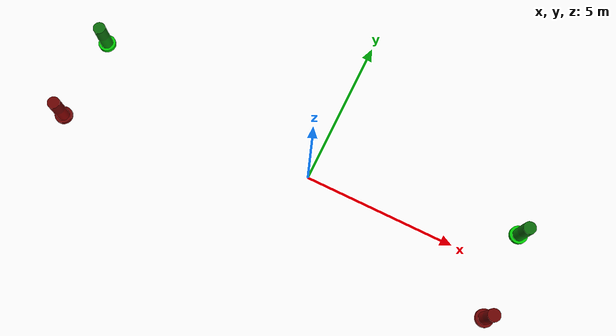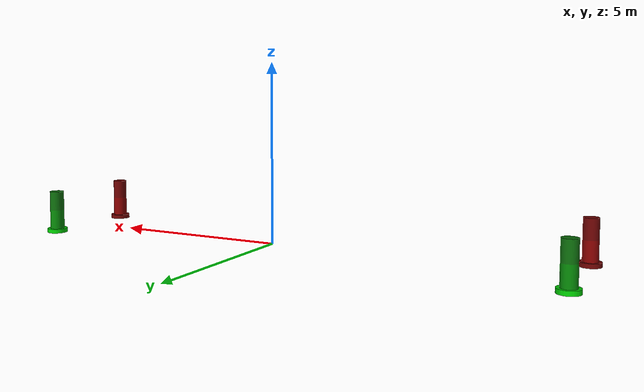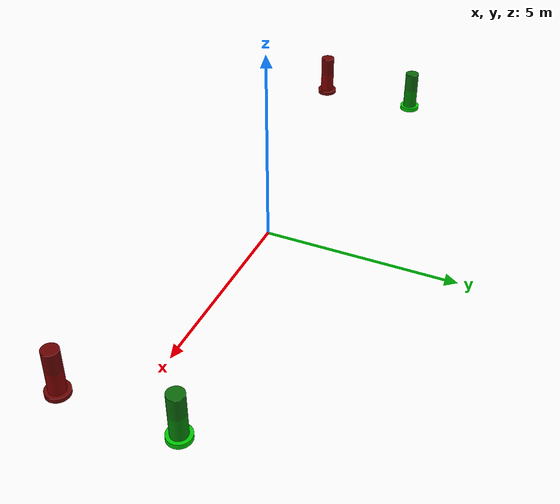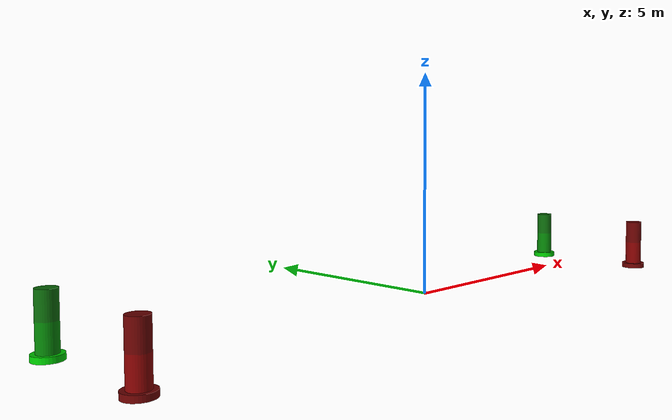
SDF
<?xml version="1.0" ?>
<sdf version="1.6">
  <model name="NavigationDemonstration2">
    <link name="NavigationDemonstration2l">
      <pose>0 0 0 0 0 0</pose>
      <velocity_decay>
        <linear>0.001</linear>
        <angular>0.001</angular>
      </velocity_decay>
      <inertial>
        <pose>0 0 -10 0 0 0</pose>
        <mass>10</mass>
        <inertia>
          <ixx>10</ixx>
          <ixy>0</ixy>
          <ixz>0</ixz>
          <iyy>10</iyy>
          <iyz>0</iyz>
          <izz>10</izz>
        </inertia>
      </inertial>
      <collision name="NavigationDemonstration2c">
        <geometry>
	  <mesh><uri>model://NavigationDemonstration2/mesh/NavigationDemonstration2.dae</uri></mesh>
          <cylinder>
            <radius>0.25</radius>
            <length>1.0</length>
          </cylinder>
        </geometry>
      </collision>
      <visual name="NavigationDemonstration2v">
        <geometry>
	<mesh><uri>model://NavigationDemonstration2/mesh/NavigationDemonstration2.dae</uri></mesh>
        </geometry>
      </visual>
    </link>
  </model>
</sdf>
